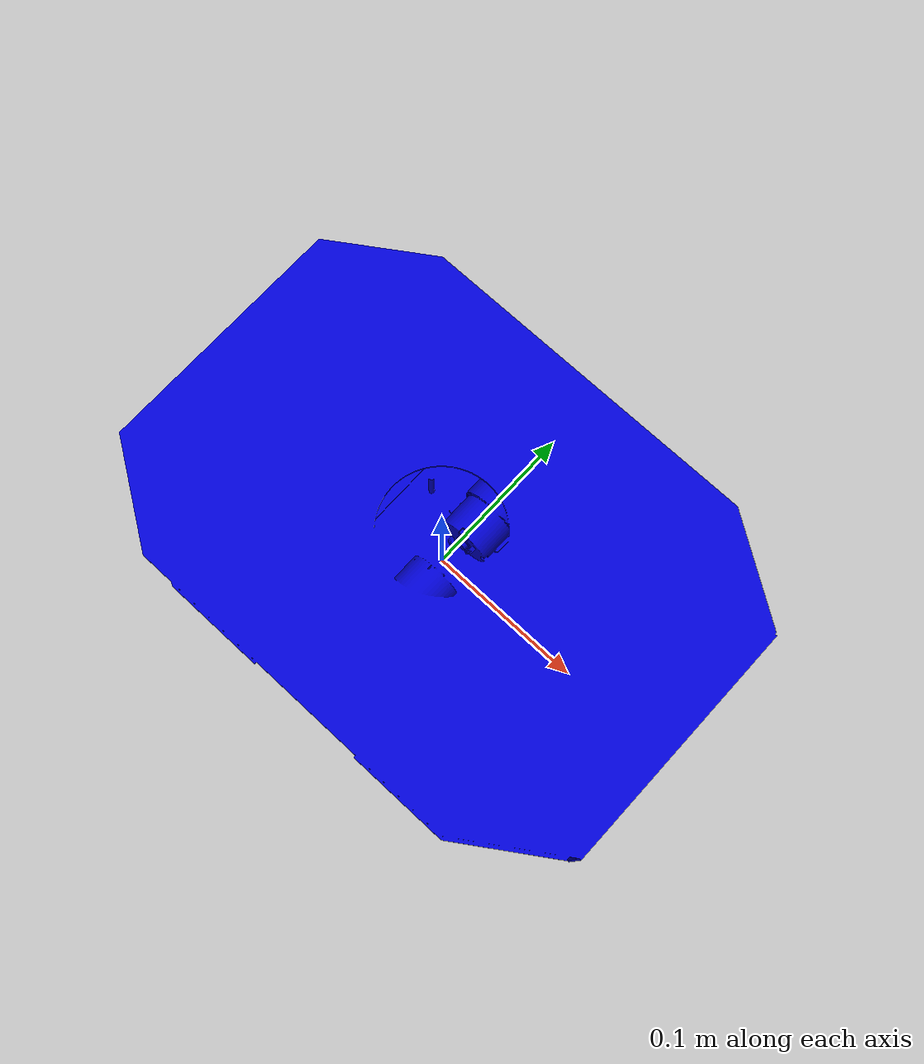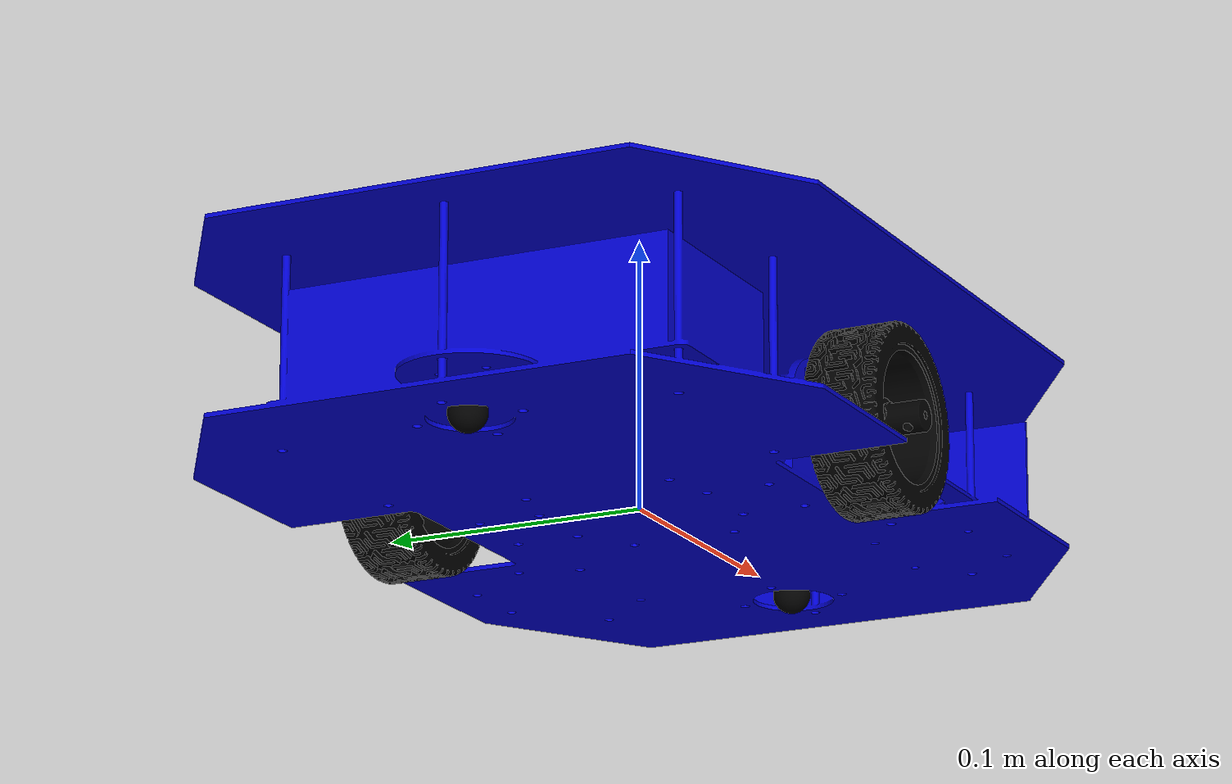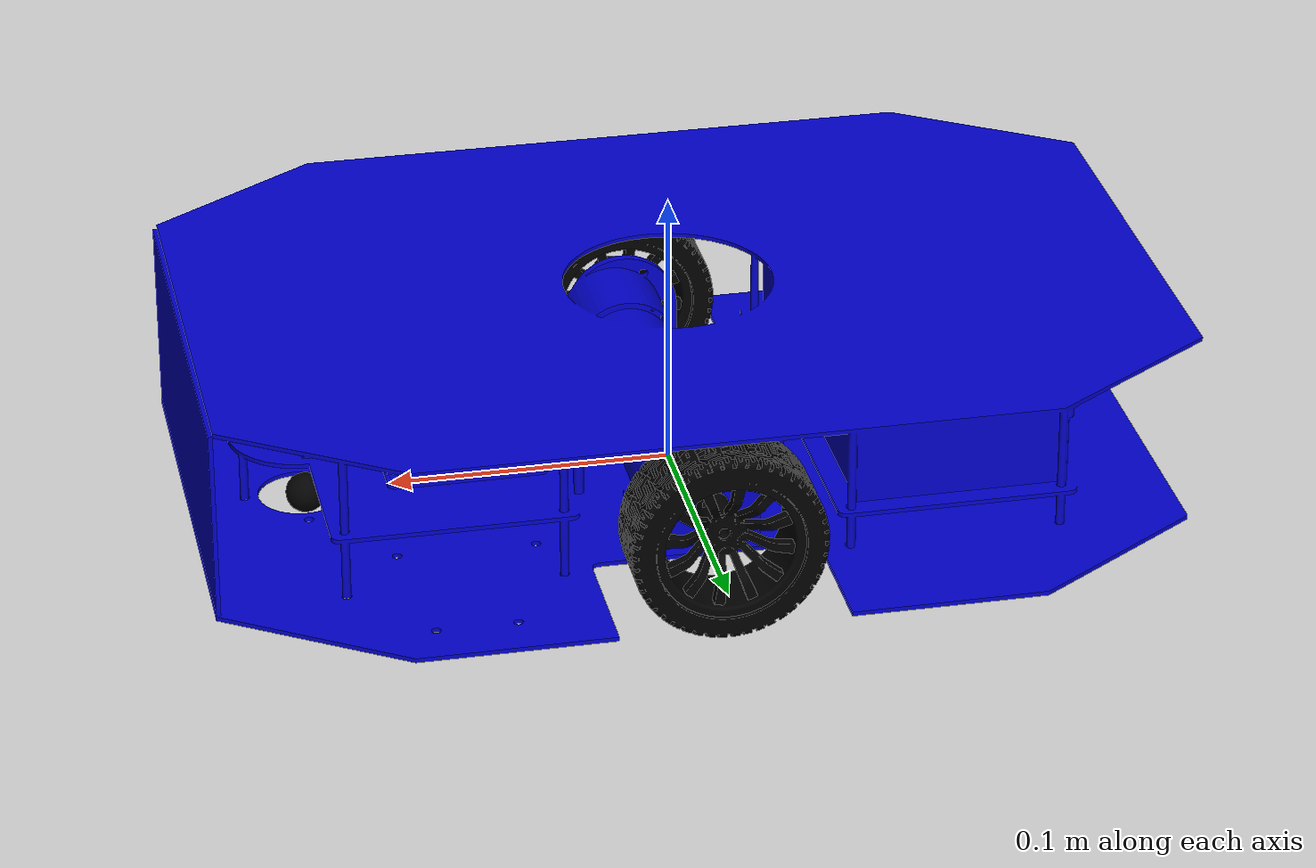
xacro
<?xml version="1.0"?>

<robot name="Benzene" xmlns:xacro="http://www.ros.org/wiki/xacro">

  <xacro:property name="base_length" value="0.340"/>
  <xacro:property name="base_width"  value="0.240"/>
  <xacro:property name="base_height" value="0.0716"/>
  <xacro:property name="base_mass"   value="5.0"/>
  <xacro:property name="wheel_radius" value="0.035"/>
  <xacro:property name="wheel_width"  value="0.020"/>
  <xacro:property name="wheel_mass"   value="0.20"/>
  <xacro:property name="caster_radius" value="0.015"/>
  <xacro:property name="caster_width"  value="0.020"/>
  <xacro:property name="caster_mass"   value="0.05"/>

  <material name="black">
    <color rgba="0.0 0.0 0.0 1.0"/>
  </material>
  <material name="white">
    <color rgba="1.0 1.0 1.0 1.0"/>
  </material>
  <material name="red">
    <color rgba="1.0 0.0 0.0 1.0"/>
  </material>
  <material name="blue">
    <color rgba="0 0 0.8 1"/>
  </material>

  <xacro:macro name="default_inertial" params="mass">
    <inertial>
      <mass value="${mass}" />
      <inertia ixx="1e-3" ixy="0.0" ixz="0.0" iyy="1e-3" iyz="0.0" izz="1e-3" />
    </inertial>
  </xacro:macro>

  <joint name="base_footprint_joint" type="fixed">
    <parent link="base_footprint"/>
    <child link="base_link"/>
    <origin xyz="0 0 0" rpy="0 0 0"/>
  </joint>

  <link name="base_footprint"/>

  <link name="base_link">
    <visual>
      <origin xyz="0 0 0" rpy="1.5708 0 ${pi/2}"/>
      <geometry>
        <mesh
          filename="package://benzene_description/meshes/v3/visual/base_link.stl"
          scale="0.001 0.001 0.001"/>
      </geometry>
      <material name="blue"/>
    </visual>

    <collision>
      <origin xyz="0 0 0.025" rpy="0 0 0"/>
      <geometry>
        <box size="${base_length} ${base_width} ${base_height}"/>
      </geometry>
    </collision>

    <inertial>
      <origin xyz="0 0 0" rpy="0 0 0"/>
      <mass value="${base_mass}"/>
      <inertia
        ixx="${(1.0/12.0) * base_mass * (base_width*base_width + base_height*base_height)}"
        ixy="0.0" ixz="0.0"
        iyy="${(1.0/12.0) * base_mass * (base_length*base_length + base_height*base_height)}"
        iyz="0.0"
        izz="${(1.0/12.0) * base_mass * (base_length*base_length + base_width*base_width)}"/>
    </inertial>

    <xacro:default_inertial mass="${base_mass}"/>
  </link>

  <joint name="right_wheel_joint" type="continuous">
    <parent link="base_link"/>
    <child link="right_wheel"/>
    <origin xyz="0 -0.0925 0.020" rpy="0 0 0"/>
    <axis xyz="0 1 0"/>
    <dynamics damping="0.05" friction="0.05"/>
  </joint>

  <link name="right_wheel">
      <visual>
        <origin xyz="0 0 0" rpy="0 0 ${pi/2}"/>
        <geometry>
          <mesh filename="package://benzene_description/meshes/v3/visual/wheel_link.stl" scale="0.001 0.001 0.001"/>
        </geometry>
        <material name="black"/>
      </visual>
      <collision>
        <origin xyz="0 0 0" rpy="-${pi/2} 0 0"/>
        <geometry>x`
          <cylinder
            radius="${wheel_radius}"
            length="${wheel_width}"/>
        </geometry>
      </collision>
      <inertial>
        <origin xyz="0 0 0" rpy="0 0 0"/>
        <mass value="${wheel_mass}"/>
        <inertia
          ixx="${(1.0/12.0) * wheel_mass * (3*wheel_radius*wheel_radius + wheel_width*wheel_width)}"
          ixy="0.0" ixz="0.0"
          iyy="${(1.0/12.0) * wheel_mass * (3*wheel_radius*wheel_radius + wheel_width*wheel_width)}"
          iyz="0.0"
          izz="${0.5 * wheel_mass * wheel_radius*wheel_radius}"/>
      </inertial>
  </link>

  <joint name="left_wheel_joint" type="continuous">
    <parent link="base_link"/>
    <child link="left_wheel"/>
    <origin xyz="0 0.0925 0.020" rpy="0 0 0"/>
    <axis xyz="0 1 0"/>
    <dynamics damping="0.05" friction="0.05"/>
  </joint>

  <link name="left_wheel">
      <visual>
        <origin xyz="0 0 0" rpy="0 0 ${pi/2}"/>
        <geometry>
          <mesh filename="package://benzene_description/meshes/v3/visual/wheel_link.stl" scale="0.001 0.001 0.001"/>
        </geometry>
        <material name="black"/>
      </visual>
      <collision>
        <origin xyz="0 0 0" rpy="-${pi/2} 0 0"/>
        <geometry>x`
          <cylinder
            radius="${wheel_radius}"
            length="${wheel_width}"/>
        </geometry>
      </collision>
      <inertial>
        <origin xyz="0 0 0" rpy="0 0 0"/>
        <mass value="${wheel_mass}"/>
        <inertia
          ixx="${(1.0/12.0) * wheel_mass * (3*wheel_radius*wheel_radius + wheel_width*wheel_width)}"
          ixy="0.0" ixz="0.0"
          iyy="${(1.0/12.0) * wheel_mass * (3*wheel_radius*wheel_radius + wheel_width*wheel_width)}"
          iyz="0.0"
          izz="${0.5 * wheel_mass * wheel_radius*wheel_radius}"/>
      </inertial>
  </link>

  <joint name="back_caster_joint" type="fixed">
    <parent link="base_link"/>
    <child link="back_caster"/>
    <origin xyz="-0.13 0 0" rpy="0 0 0"/>
  </joint>

  <link name="back_caster">
    <visual>
      <origin xyz="0 0 0" rpy="0 0 0"/>
      <geometry>
        <mesh filename="package://benzene_description/meshes/v3/visual/caster_link.stl" scale="0.001 0.001 0.001"/>
      </geometry>
      <material name="black"/>
    </visual>
    <collision>
      <origin xyz="0 0 0" rpy="0 0 0"/>
      <geometry>
        <sphere radius="${caster_radius}"/>
      </geometry>
    </collision>
    <inertial>
      <origin xyz="0 0 0" rpy="0 0 0"/>
      <mass value="${caster_mass}"/>
      <inertia
        ixx="${(2.0/5.0) * caster_mass * caster_radius * caster_radius}"
        ixy="0.0" ixz="0.0"
        iyy="${(2.0/5.0) * caster_mass * caster_radius * caster_radius}"
        iyz="0.0"
        izz="${(2.0/5.0) * caster_mass * caster_radius * caster_radius}"/>
    </inertial>
  </link>

  <joint name="front_caster_joint" type="fixed">
    <parent link="base_link"/>
    <child link="front_caster"/>
    <origin xyz="0.13 0 0" rpy="0 0 0"/>
  </joint>

  <link name="front_caster">
    <visual>
      <origin xyz="0 0 0" rpy="0 0 0"/>
      <geometry>
        <mesh filename="package://benzene_description/meshes/v3/visual/caster_link.stl" scale="0.001 0.001 0.001"/>
      </geometry>
      <material name="black"/>
    </visual>
    <collision>
      <origin xyz="0 0 0" rpy="0 0 0"/>
      <geometry>
        <sphere radius="${caster_radius}"/>
      </geometry>
    </collision>
    <inertial>
      <origin xyz="0 0 0" rpy="0 0 0"/>
      <mass value="${caster_mass}"/>
      <inertia
        ixx="${(2.0/5.0) * caster_mass * caster_radius * caster_radius}"
        ixy="0.0" ixz="0.0"
        iyy="${(2.0/5.0) * caster_mass * caster_radius * caster_radius}"
        iyz="0.0"
        izz="${(2.0/5.0) * caster_mass * caster_radius * caster_radius}"/>
    </inertial>
  </link>

</robot>
